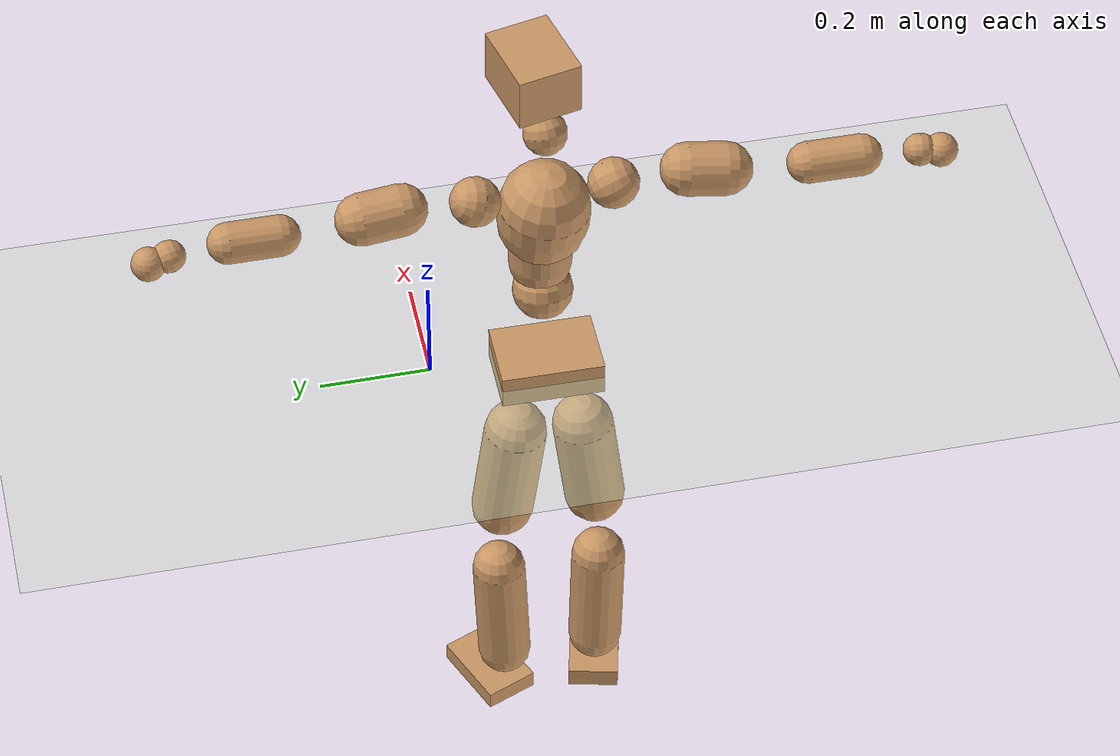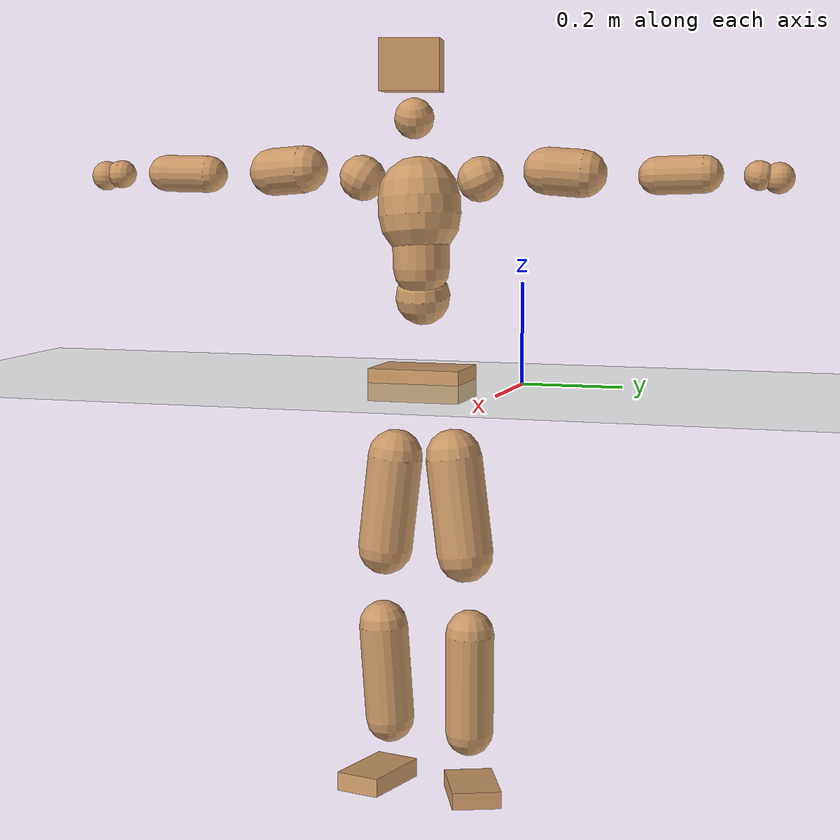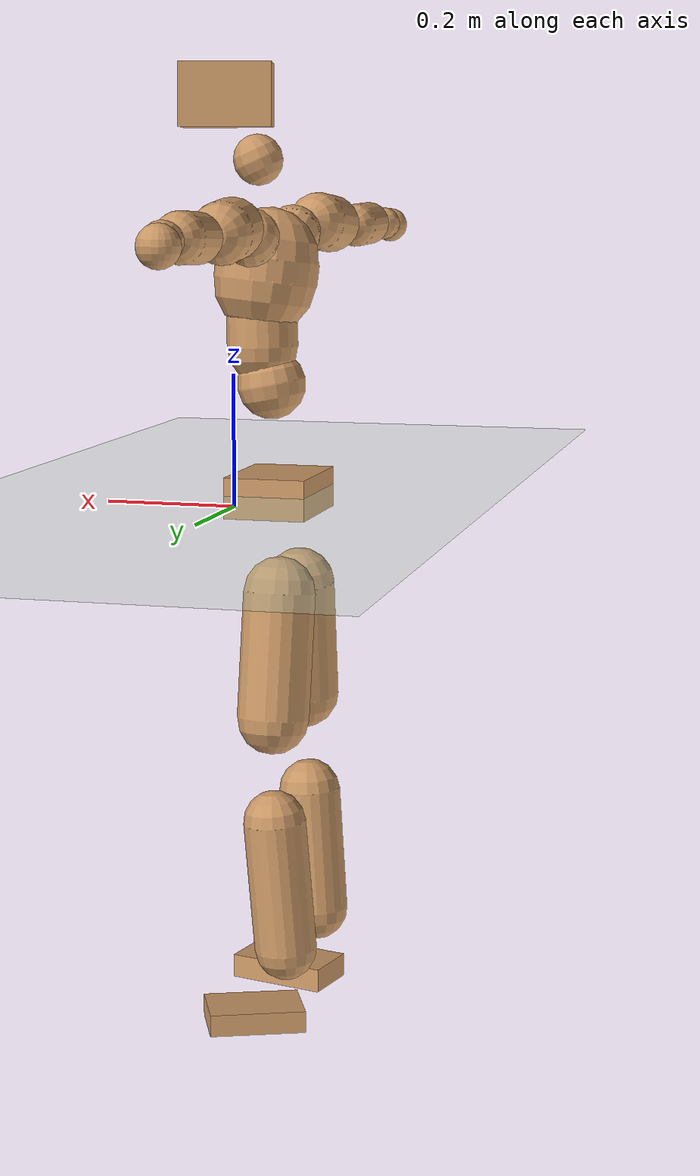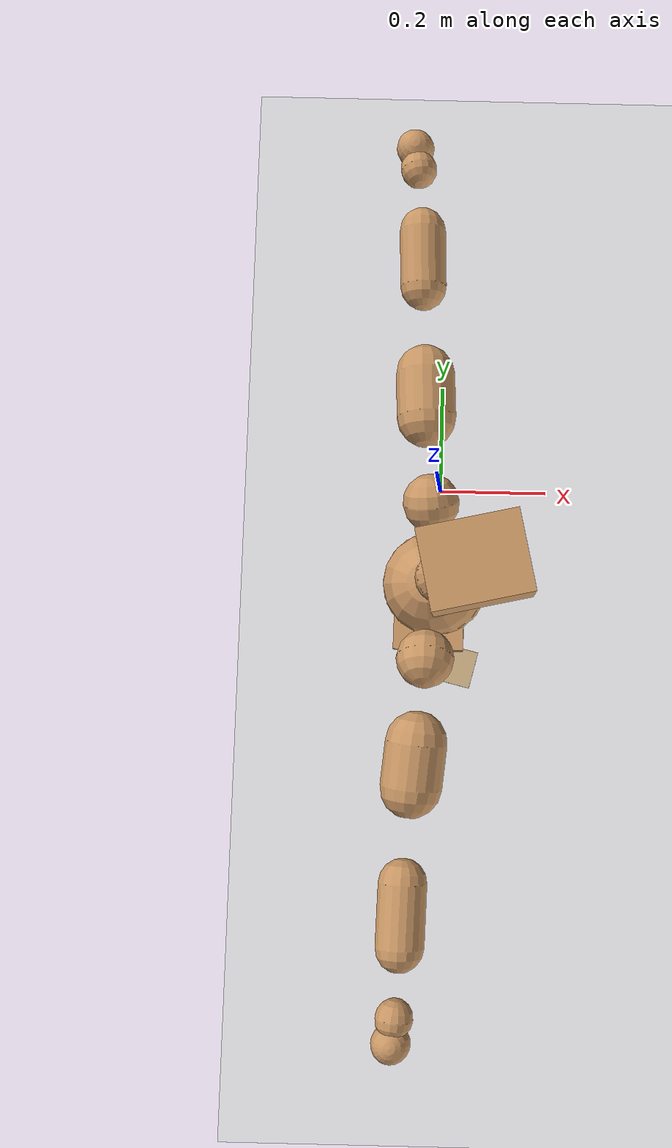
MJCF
<mujoco model="humanoid">
  <compiler coordinate="local" angle="radian"/>
  <default>
    <joint damping="0.0" armature="0.01" stiffness="0.0" limited="true"/>
    <geom conaffinity="1" condim="3" contype="7" margin="0.001" rgba="0.8 0.6 .4 1"/>
  </default>
  <asset>
    <texture type="skybox" builtin="gradient" rgb1=".4 .5 .6" rgb2="0 0 0" width="100" height="100"/>
    <texture builtin="flat" height="1278" mark="cross" markrgb="1 1 1" name="texgeom" random="0.01" rgb1="0.8 0.6 0.4" rgb2="0.8 0.6 0.4" type="cube" width="127"/>
    <texture builtin="checker" height="100" name="texplane" rgb1="0 0 0" rgb2="0.8 0.8 0.8" type="2d" width="100"/>
    <material name="MatPlane" reflectance="0.5" shininess="1" specular="1" texrepeat="60 60" texture="texplane"/>
    <material name="geom" texture="texgeom" texuniform="true"/>
  </asset>
  <worldbody>
    <light cutoff="100" diffuse="1 1 1" dir="-0 0 -1.3" directional="true" exponent="1" pos="0 0 1.3" specular=".1 .1 .1"/>
    <geom conaffinity="1" condim="3" name="floor" pos="0 0 0" rgba="0.8 0.9 0.8 1" size="100 100 .2" type="plane" material="MatPlane"/>
    <body name="Pelvis" pos="-0.0014 -0.209 0.0023">
      <freejoint name="Pelvis"/>
      <geom type="box" contype="1" conaffinity="1" density="5359.375077" pos="-0.0129 0.0001 -0.0084" size="0.0651 0.0933 0.0323" quat="1.0000 0.0000 0.0000 -0.0042" name="Pelvis"/>
      <body name="L_Hip" pos="-0.0313 0.0501 -0.0729">
        <joint name="L_Hip_x" type="hinge" pos="0 0 0" axis="1 0 0" stiffness="1600" damping="160" armature="0.02" range="-180.0000 180.0000"/>
        <joint name="L_Hip_y" type="hinge" pos="0 0 0" axis="0 1 0" stiffness="1600" damping="160" armature="0.02" range="-180.0000 180.0000"/>
        <joint name="L_Hip_z" type="hinge" pos="0 0 0" axis="0 0 1" stiffness="1600" damping="160" armature="0.02" range="-180.0000 180.0000"/>
        <geom type="capsule" contype="1" conaffinity="1" density="2040.816327" size="0.0573" fromto="0.0016 0.0110 -0.0866 0.0051 0.0363 -0.2848" name="L_Hip"/>
        <body name="L_Knee" pos="0.0067 0.0474 -0.3714">
          <joint name="L_Knee_x" type="hinge" pos="0 0 0" axis="1 0 0" stiffness="1600" damping="160" armature="0.02" range="-180.0000 180.0000"/>
          <joint name="L_Knee_y" type="hinge" pos="0 0 0" axis="0 1 0" stiffness="1600" damping="160" armature="0.02" range="-180.0000 180.0000"/>
          <joint name="L_Knee_z" type="hinge" pos="0 0 0" axis="0 0 1" stiffness="1600" damping="160" armature="0.02" range="-180.0000 180.0000"/>
          <geom type="capsule" contype="1" conaffinity="1" density="1234.567901" size="0.0496" fromto="-0.0066 -0.0020 -0.0793 -0.0240 -0.0075 -0.2904" name="L_Knee"/>
          <body name="L_Ankle" pos="-0.0306 -0.0095 -0.3698">
            <joint name="L_Ankle_x" type="hinge" pos="0 0 0" axis="1 0 0" stiffness="1600" damping="160" armature="0.02" range="-180.0000 180.0000"/>
            <joint name="L_Ankle_y" type="hinge" pos="0 0 0" axis="0 1 0" stiffness="1600" damping="160" armature="0.02" range="-180.0000 180.0000"/>
            <joint name="L_Ankle_z" type="hinge" pos="0 0 0" axis="0 0 1" stiffness="1600" damping="160" armature="0.02" range="-180.0000 180.0000"/>
            <geom type="box" contype="1" conaffinity="1" density="999.999973" pos="0.0534 0.0221 -0.0270" size="0.0763 0.0497 0.0175" quat="0.9808 0.0000 0.0000 0.1953" name="L_Ankle"/>
            <body name="L_Toe" pos="0.1068 0.0443 -0.054">
              <joint name="L_Toe_x" type="hinge" pos="0 0 0" axis="1 0 0" stiffness="1000" damping="100" armature="0.02" range="-180.0000 180.0000"/>
              <joint name="L_Toe_y" type="hinge" pos="0 0 0" axis="0 1 0" stiffness="1000" damping="100" armature="0.02" range="-180.0000 180.0000"/>
              <joint name="L_Toe_z" type="hinge" pos="0 0 0" axis="0 0 1" stiffness="1000" damping="100" armature="0.02" range="-180.0000 180.0000"/>
              <geom type="box" contype="1" conaffinity="1" density="6956854.266194" pos="0.0000 0.0000 0.0286" size="0.001 0.0024 0.001" quat="0.9798 0.0000 0.0000 0.1997" name="L_Toe"/>
            </body>
          </body>
        </body>
      </body>
      <body name="R_Hip" pos="-0.03 -0.0528 -0.0785">
        <joint name="R_Hip_x" type="hinge" pos="0 0 0" axis="1 0 0" stiffness="1600" damping="160" armature="0.02" range="-180.0000 180.0000"/>
        <joint name="R_Hip_y" type="hinge" pos="0 0 0" axis="0 1 0" stiffness="1600" damping="160" armature="0.02" range="-180.0000 180.0000"/>
        <joint name="R_Hip_z" type="hinge" pos="0 0 0" axis="0 0 1" stiffness="1600" damping="160" armature="0.02" range="-180.0000 180.0000"/>
        <geom type="capsule" contype="1" conaffinity="1" density="2040.816327" size="0.056" fromto="-0.0011 -0.0103 -0.0854 -0.0034 -0.0331 -0.2754" name="R_Hip"/>
        <body name="R_Knee" pos="-0.0045 -0.0434 -0.3608">
          <joint name="R_Knee_x" type="hinge" pos="0 0 0" axis="1 0 0" stiffness="1600" damping="160" armature="0.02" range="-180.0000 180.0000"/>
          <joint name="R_Knee_y" type="hinge" pos="0 0 0" axis="0 1 0" stiffness="1600" damping="160" armature="0.02" range="-180.0000 180.0000"/>
          <joint name="R_Knee_z" type="hinge" pos="0 0 0" axis="0 0 1" stiffness="1600" damping="160" armature="0.02" range="-180.0000 180.0000"/>
          <geom type="capsule" contype="1" conaffinity="1" density="1234.567901" size="0.0503" fromto="-0.0063 0.0034 -0.0800 -0.0222 0.0120 -0.2826" name="R_Knee"/>
          <body name="R_Ankle" pos="-0.0285 0.0154 -0.3627">
            <joint name="R_Ankle_x" type="hinge" pos="0 0 0" axis="1 0 0" stiffness="1600" damping="160" armature="0.02" range="-180.0000 180.0000"/>
            <joint name="R_Ankle_y" type="hinge" pos="0 0 0" axis="0 1 0" stiffness="1600" damping="160" armature="0.02" range="-180.0000 180.0000"/>
            <joint name="R_Ankle_z" type="hinge" pos="0 0 0" axis="0 0 1" stiffness="1600" damping="160" armature="0.02" range="-180.0000 180.0000"/>
            <geom type="box" contype="1" conaffinity="1" density="999.999961" pos="0.0575 -0.0139 -0.0284" size="0.0802 0.0469 0.0192" quat="0.9930 0.0000 0.0000 -0.1185" name="R_Ankle"/>
            <body name="R_Toe" pos="0.1149 -0.0278 -0.0568">
              <joint name="R_Toe_x" type="hinge" pos="0 0 0" axis="1 0 0" stiffness="1000" damping="100" armature="0.02" range="-180.0000 180.0000"/>
              <joint name="R_Toe_y" type="hinge" pos="0 0 0" axis="0 1 0" stiffness="1000" damping="100" armature="0.02" range="-180.0000 180.0000"/>
              <joint name="R_Toe_z" type="hinge" pos="0 0 0" axis="0 0 1" stiffness="1000" damping="100" armature="0.02" range="-180.0000 180.0000"/>
              <geom type="box" contype="1" conaffinity="1" density="7997488.901777" pos="0.0000 0.0000 0.0313" size="0.0009 0.0023 0.0011" quat="0.9941 0.0000 0.0000 -0.1085" name="R_Toe"/>
            </body>
          </body>
        </body>
      </body>
      <body name="Torso" pos="-0.0162 0.0033 0.1009">
        <joint name="Torso_x" type="hinge" pos="0 0 0" axis="1 0 0" stiffness="2000" damping="200" armature="0.02" range="-180.0000 180.0000"/>
        <joint name="Torso_y" type="hinge" pos="0 0 0" axis="0 1 0" stiffness="2000" damping="200" armature="0.02" range="-180.0000 180.0000"/>
        <joint name="Torso_z" type="hinge" pos="0 0 0" axis="0 0 1" stiffness="2000" damping="200" armature="0.02" range="-180.0000 180.0000"/>
        <geom type="capsule" contype="1" conaffinity="1" density="2040.816327" size="0.0545" fromto="0.0146 0.0015 0.0626 0.0150 0.0015 0.0646" name="Torso"/>
        <body name="Spine" pos="0.0296 0.003 0.1272">
          <joint name="Spine_x" type="hinge" pos="0 0 0" axis="1 0 0" stiffness="2000" damping="200" armature="0.02" range="-180.0000 180.0000"/>
          <joint name="Spine_y" type="hinge" pos="0 0 0" axis="0 1 0" stiffness="2000" damping="200" armature="0.02" range="-180.0000 180.0000"/>
          <joint name="Spine_z" type="hinge" pos="0 0 0" axis="0 0 1" stiffness="2000" damping="200" armature="0.02" range="-180.0000 180.0000"/>
          <geom type="capsule" contype="1" conaffinity="1" density="2040.816327" size="0.0567" fromto="0.0017 -0.0011 0.0566 -0.0002 0.0001 -0.0053" name="Spine"/>
          <body name="Chest" pos="0.0015 -0.001 0.0514">
            <joint name="Chest_x" type="hinge" pos="0 0 0" axis="1 0 0" stiffness="2000" damping="200" armature="0.02" range="-180.0000 180.0000"/>
            <joint name="Chest_y" type="hinge" pos="0 0 0" axis="0 1 0" stiffness="2000" damping="200" armature="0.02" range="-180.0000 180.0000"/>
            <joint name="Chest_z" type="hinge" pos="0 0 0" axis="0 0 1" stiffness="2000" damping="200" armature="0.02" range="-180.0000 180.0000"/>
            <geom type="capsule" contype="1" conaffinity="1" density="2040.816327" size="0.0817" fromto="-0.0086 -0.0060 0.0811 -0.0047 -0.0033 0.0448" name="Chest"/>
            <body name="Neck" pos="-0.0154 -0.015 0.1857">
              <joint name="Neck_x" type="hinge" pos="0 0 0" axis="1 0 0" stiffness="1000" damping="100" armature="0.02" range="-180.0000 180.0000"/>
              <joint name="Neck_y" type="hinge" pos="0 0 0" axis="0 1 0" stiffness="1000" damping="100" armature="0.02" range="-180.0000 180.0000"/>
              <joint name="Neck_z" type="hinge" pos="0 0 0" axis="0 0 1" stiffness="1000" damping="100" armature="0.02" range="-180.0000 180.0000"/>
              <geom type="capsule" contype="1" conaffinity="1" density="1000" size="0.0392" fromto="0.0234 0.0045 0.0484 0.0242 0.0047 0.0502" name="Neck"/>
              <body name="Head" pos="0.0476 0.0092 0.0987">
                <joint name="Head_x" type="hinge" pos="0 0 0" axis="1 0 0" stiffness="1000" damping="100" armature="0.02" range="-180.0000 180.0000"/>
                <joint name="Head_y" type="hinge" pos="0 0 0" axis="0 1 0" stiffness="1000" damping="100" armature="0.02" range="-180.0000 180.0000"/>
                <joint name="Head_z" type="hinge" pos="0 0 0" axis="0 0 1" stiffness="1000" damping="100" armature="0.02" range="-180.0000 180.0000"/>
                <geom type="box" contype="1" conaffinity="1" density="2250.000188" pos="0.0248 0.0056 0.0503" size="0.0719 0.0577 0.0494" quat="0.9938 0.0000 0.0000 0.1112" name="Head"/>
              </body>
            </body>
            <body name="L_Thorax" pos="-0.0088 0.0624 0.096">
              <joint name="L_Thorax_x" type="hinge" pos="0 0 0" axis="1 0 0" stiffness="1000" damping="100" armature="0.02" range="-180.0000 180.0000"/>
              <joint name="L_Thorax_y" type="hinge" pos="0 0 0" axis="0 1 0" stiffness="1000" damping="100" armature="0.02" range="-180.0000 180.0000"/>
              <joint name="L_Thorax_z" type="hinge" pos="0 0 0" axis="0 0 1" stiffness="1000" damping="100" armature="0.02" range="-180.0000 180.0000"/>
              <geom type="capsule" contype="1" conaffinity="1" density="1000" size="0.0445" fromto="-0.0058 0.0542 0.0215 -0.0060 0.0560 0.0223" name="L_Thorax"/>
              <body name="L_Shoulder" pos="-0.0118 0.1102 0.0438">
                <joint name="L_Shoulder_x" type="hinge" pos="0 0 0" axis="1 0 0" stiffness="1000" damping="100" armature="0.02" range="-720.0000 720.0000"/>
                <joint name="L_Shoulder_y" type="hinge" pos="0 0 0" axis="0 1 0" stiffness="1000" damping="100" armature="0.02" range="-720.0000 720.0000"/>
                <joint name="L_Shoulder_z" type="hinge" pos="0 0 0" axis="0 0 1" stiffness="1000" damping="100" armature="0.02" range="-720.0000 720.0000"/>
                <geom type="capsule" contype="1" conaffinity="1" density="1000" size="0.0463" fromto="-0.0042 0.0760 -0.0055 -0.0081 0.1468 -0.0106" name="L_Shoulder"/>
                <body name="L_Elbow" pos="-0.0124 0.2228 -0.016">
                  <joint name="L_Elbow_x" type="hinge" pos="0 0 0" axis="1 0 0" stiffness="1000" damping="100" armature="0.02" range="-720.0000 720.0000"/>
                  <joint name="L_Elbow_y" type="hinge" pos="0 0 0" axis="0 1 0" stiffness="1000" damping="100" armature="0.02" range="-720.0000 720.0000"/>
                  <joint name="L_Elbow_z" type="hinge" pos="0 0 0" axis="0 0 1" stiffness="1000" damping="100" armature="0.02" range="-720.0000 720.0000"/>
                  <geom type="capsule" contype="1" conaffinity="1" density="1000" size="0.0364" fromto="-0.0026 0.0663 0.0023 -0.0061 0.1566 0.0055" name="L_Elbow"/>
                  <body name="L_Wrist" pos="-0.0086 0.2229 0.0079">
                    <joint name="L_Wrist_x" type="hinge" pos="0 0 0" axis="1 0 0" stiffness="600" damping="60" armature="0.02" range="-180.0000 180.0000"/>
                    <joint name="L_Wrist_y" type="hinge" pos="0 0 0" axis="0 1 0" stiffness="600" damping="60" armature="0.02" range="-180.0000 180.0000"/>
                    <joint name="L_Wrist_z" type="hinge" pos="0 0 0" axis="0 0 1" stiffness="600" damping="60" armature="0.02" range="-180.0000 180.0000"/>
                    <geom type="capsule" contype="1" conaffinity="1" density="1000" size="0.0286" fromto="-0.0063 0.0354 -0.0046 -0.0067 0.0374 -0.0049" name="L_Wrist"/>
                    <body name="L_Hand" pos="-0.013 0.0728 -0.0094">
                      <joint name="L_Hand_x" type="hinge" pos="0 0 0" axis="1 0 0" stiffness="600" damping="60" armature="0.02" range="-180.0000 180.0000"/>
                      <joint name="L_Hand_y" type="hinge" pos="0 0 0" axis="0 1 0" stiffness="600" damping="60" armature="0.02" range="-180.0000 180.0000"/>
                      <joint name="L_Hand_z" type="hinge" pos="0 0 0" axis="0 0 1" stiffness="600" damping="60" armature="0.02" range="-180.0000 180.0000"/>
                      <geom type="sphere" contype="1" conaffinity="1" density="1000" size="0.0300" pos="0.0000 0.0000 0.0000" name="L_Hand"/>
                    </body>
                  </body>
                </body>
              </body>
            </body>
            <body name="R_Thorax" pos="-0.0157 -0.0753 0.0959">
              <joint name="R_Thorax_x" type="hinge" pos="0 0 0" axis="1 0 0" stiffness="1000" damping="100" armature="0.02" range="-180.0000 180.0000"/>
              <joint name="R_Thorax_y" type="hinge" pos="0 0 0" axis="0 1 0" stiffness="1000" damping="100" armature="0.02" range="-180.0000 180.0000"/>
              <joint name="R_Thorax_z" type="hinge" pos="0 0 0" axis="0 0 1" stiffness="1000" damping="100" armature="0.02" range="-180.0000 180.0000"/>
              <geom type="capsule" contype="1" conaffinity="1" density="1000" size="0.0451" fromto="-0.0019 -0.0499 0.0225 -0.0019 -0.0517 0.0234" name="R_Thorax"/>
              <body name="R_Shoulder" pos="-0.0038 -0.1015 0.0459">
                <joint name="R_Shoulder_x" type="hinge" pos="0 0 0" axis="1 0 0" stiffness="1000" damping="100" armature="0.02" range="-720.0000 720.0000"/>
                <joint name="R_Shoulder_y" type="hinge" pos="0 0 0" axis="0 1 0" stiffness="1000" damping="100" armature="0.02" range="-720.0000 720.0000"/>
                <joint name="R_Shoulder_z" type="hinge" pos="0 0 0" axis="0 0 1" stiffness="1000" damping="100" armature="0.02" range="-720.0000 720.0000"/>
                <geom type="capsule" contype="1" conaffinity="1" density="1000" size="0.0478" fromto="-0.0075 -0.0771 -0.0066 -0.0141 -0.1449 -0.0123" name="R_Shoulder"/>
                <body name="R_Elbow" pos="-0.0216 -0.222 -0.0189">
                  <joint name="R_Elbow_x" type="hinge" pos="0 0 0" axis="1 0 0" stiffness="1000" damping="100" armature="0.02" range="-720.0000 720.0000"/>
                  <joint name="R_Elbow_y" type="hinge" pos="0 0 0" axis="0 1 0" stiffness="1000" damping="100" armature="0.02" range="-720.0000 720.0000"/>
                  <joint name="R_Elbow_z" type="hinge" pos="0 0 0" axis="0 0 1" stiffness="1000" damping="100" armature="0.02" range="-720.0000 720.0000"/>
                  <geom type="capsule" contype="1" conaffinity="1" density="1000" size="0.0372" fromto="-0.0012 -0.0671 0.0011 -0.0030 -0.1624 0.0027" name="R_Elbow"/>
                  <body name="R_Wrist" pos="-0.0042 -0.2296 0.0038">
                    <joint name="R_Wrist_x" type="hinge" pos="0 0 0" axis="1 0 0" stiffness="600" damping="60" armature="0.02" range="-180.0000 180.0000"/>
                    <joint name="R_Wrist_y" type="hinge" pos="0 0 0" axis="0 1 0" stiffness="600" damping="60" armature="0.02" range="-180.0000 180.0000"/>
                    <joint name="R_Wrist_z" type="hinge" pos="0 0 0" axis="0 0 1" stiffness="600" damping="60" armature="0.02" range="-180.0000 180.0000"/>
                    <geom type="capsule" contype="1" conaffinity="1" density="1000" size="0.0289" fromto="-0.0042 -0.0361 -0.0035 -0.0044 -0.0381 -0.0036" name="R_Wrist"/>
                    <body name="R_Hand" pos="-0.0086 -0.0742 -0.0071">
                      <joint name="R_Hand_x" type="hinge" pos="0 0 0" axis="1 0 0" stiffness="600" damping="60" armature="0.02" range="-180.0000 180.0000"/>
                      <joint name="R_Hand_y" type="hinge" pos="0 0 0" axis="0 1 0" stiffness="600" damping="60" armature="0.02" range="-180.0000 180.0000"/>
                      <joint name="R_Hand_z" type="hinge" pos="0 0 0" axis="0 0 1" stiffness="600" damping="60" armature="0.02" range="-180.0000 180.0000"/>
                      <geom type="sphere" contype="1" conaffinity="1" density="1000" size="0.0302" pos="0.0000 0.0000 0.0000" name="R_Hand"/>
                    </body>
                  </body>
                </body>
              </body>
            </body>
          </body>
        </body>
      </body>
    </body>
  </worldbody>
  <actuator>
    <motor name="L_Hip_x" joint="L_Hip_x" gear="500"/>
    <motor name="L_Hip_y" joint="L_Hip_y" gear="500"/>
    <motor name="L_Hip_z" joint="L_Hip_z" gear="500"/>
    <motor name="L_Knee_x" joint="L_Knee_x" gear="500"/>
    <motor name="L_Knee_y" joint="L_Knee_y" gear="500"/>
    <motor name="L_Knee_z" joint="L_Knee_z" gear="500"/>
    <motor name="L_Ankle_x" joint="L_Ankle_x" gear="500"/>
    <motor name="L_Ankle_y" joint="L_Ankle_y" gear="500"/>
    <motor name="L_Ankle_z" joint="L_Ankle_z" gear="500"/>
    <motor name="L_Toe_x" joint="L_Toe_x" gear="500"/>
    <motor name="L_Toe_y" joint="L_Toe_y" gear="500"/>
    <motor name="L_Toe_z" joint="L_Toe_z" gear="500"/>
    <motor name="R_Hip_x" joint="R_Hip_x" gear="500"/>
    <motor name="R_Hip_y" joint="R_Hip_y" gear="500"/>
    <motor name="R_Hip_z" joint="R_Hip_z" gear="500"/>
    <motor name="R_Knee_x" joint="R_Knee_x" gear="500"/>
    <motor name="R_Knee_y" joint="R_Knee_y" gear="500"/>
    <motor name="R_Knee_z" joint="R_Knee_z" gear="500"/>
    <motor name="R_Ankle_x" joint="R_Ankle_x" gear="500"/>
    <motor name="R_Ankle_y" joint="R_Ankle_y" gear="500"/>
    <motor name="R_Ankle_z" joint="R_Ankle_z" gear="500"/>
    <motor name="R_Toe_x" joint="R_Toe_x" gear="500"/>
    <motor name="R_Toe_y" joint="R_Toe_y" gear="500"/>
    <motor name="R_Toe_z" joint="R_Toe_z" gear="500"/>
    <motor name="Torso_x" joint="Torso_x" gear="500"/>
    <motor name="Torso_y" joint="Torso_y" gear="500"/>
    <motor name="Torso_z" joint="Torso_z" gear="500"/>
    <motor name="Spine_x" joint="Spine_x" gear="500"/>
    <motor name="Spine_y" joint="Spine_y" gear="500"/>
    <motor name="Spine_z" joint="Spine_z" gear="500"/>
    <motor name="Chest_x" joint="Chest_x" gear="500"/>
    <motor name="Chest_y" joint="Chest_y" gear="500"/>
    <motor name="Chest_z" joint="Chest_z" gear="500"/>
    <motor name="Neck_x" joint="Neck_x" gear="500"/>
    <motor name="Neck_y" joint="Neck_y" gear="500"/>
    <motor name="Neck_z" joint="Neck_z" gear="500"/>
    <motor name="Head_x" joint="Head_x" gear="500"/>
    <motor name="Head_y" joint="Head_y" gear="500"/>
    <motor name="Head_z" joint="Head_z" gear="500"/>
    <motor name="L_Thorax_x" joint="L_Thorax_x" gear="500"/>
    <motor name="L_Thorax_y" joint="L_Thorax_y" gear="500"/>
    <motor name="L_Thorax_z" joint="L_Thorax_z" gear="500"/>
    <motor name="L_Shoulder_x" joint="L_Shoulder_x" gear="500"/>
    <motor name="L_Shoulder_y" joint="L_Shoulder_y" gear="500"/>
    <motor name="L_Shoulder_z" joint="L_Shoulder_z" gear="500"/>
    <motor name="L_Elbow_x" joint="L_Elbow_x" gear="500"/>
    <motor name="L_Elbow_y" joint="L_Elbow_y" gear="500"/>
    <motor name="L_Elbow_z" joint="L_Elbow_z" gear="500"/>
    <motor name="L_Wrist_x" joint="L_Wrist_x" gear="500"/>
    <motor name="L_Wrist_y" joint="L_Wrist_y" gear="500"/>
    <motor name="L_Wrist_z" joint="L_Wrist_z" gear="500"/>
    <motor name="L_Hand_x" joint="L_Hand_x" gear="500"/>
    <motor name="L_Hand_y" joint="L_Hand_y" gear="500"/>
    <motor name="L_Hand_z" joint="L_Hand_z" gear="500"/>
    <motor name="R_Thorax_x" joint="R_Thorax_x" gear="500"/>
    <motor name="R_Thorax_y" joint="R_Thorax_y" gear="500"/>
    <motor name="R_Thorax_z" joint="R_Thorax_z" gear="500"/>
    <motor name="R_Shoulder_x" joint="R_Shoulder_x" gear="500"/>
    <motor name="R_Shoulder_y" joint="R_Shoulder_y" gear="500"/>
    <motor name="R_Shoulder_z" joint="R_Shoulder_z" gear="500"/>
    <motor name="R_Elbow_x" joint="R_Elbow_x" gear="500"/>
    <motor name="R_Elbow_y" joint="R_Elbow_y" gear="500"/>
    <motor name="R_Elbow_z" joint="R_Elbow_z" gear="500"/>
    <motor name="R_Wrist_x" joint="R_Wrist_x" gear="500"/>
    <motor name="R_Wrist_y" joint="R_Wrist_y" gear="500"/>
    <motor name="R_Wrist_z" joint="R_Wrist_z" gear="500"/>
    <motor name="R_Hand_x" joint="R_Hand_x" gear="500"/>
    <motor name="R_Hand_y" joint="R_Hand_y" gear="500"/>
    <motor name="R_Hand_z" joint="R_Hand_z" gear="500"/>
  </actuator>
  <contact>
    <exclude body1="Torso" body2="Chest"/>
    <exclude body1="Head" body2="Chest"/>
    <exclude body1="R_Knee" body2="R_Toe"/>
    <exclude body1="R_Knee" body2="L_Ankle"/>
    <exclude body1="R_Knee" body2="L_Toe"/>
    <exclude body1="L_Knee" body2="L_Toe"/>
    <exclude body1="L_Knee" body2="R_Ankle"/>
    <exclude body1="L_Knee" body2="R_Toe"/>
    <exclude body1="L_Shoulder" body2="Chest"/>
    <exclude body1="R_Shoulder" body2="Chest"/>
  </contact>
  <sensor/>
  <size njmax="700" nconmax="700"/>
</mujoco>
